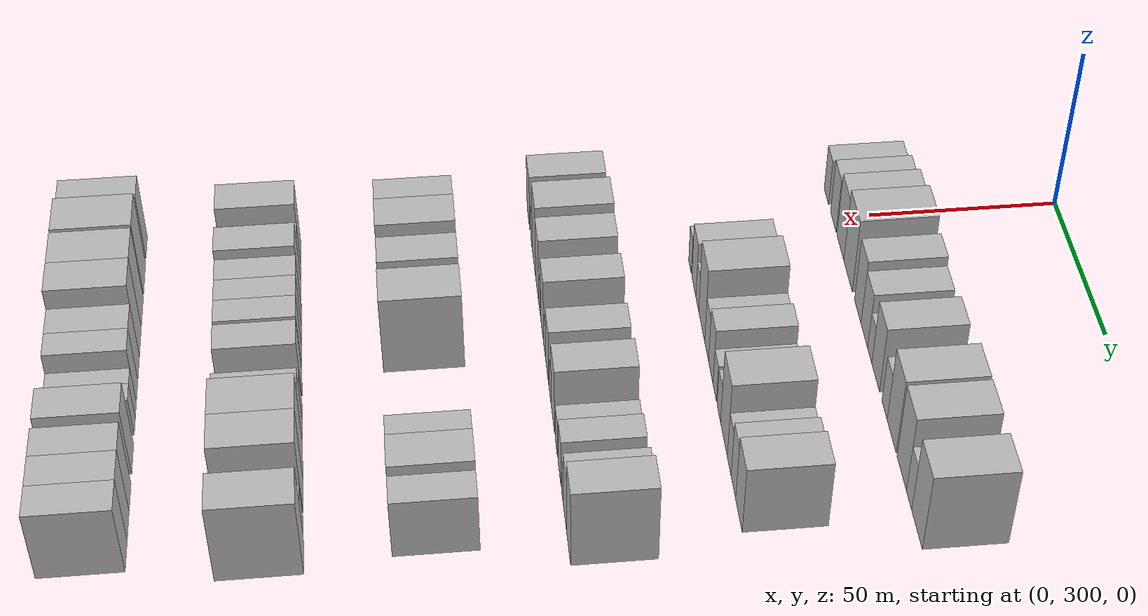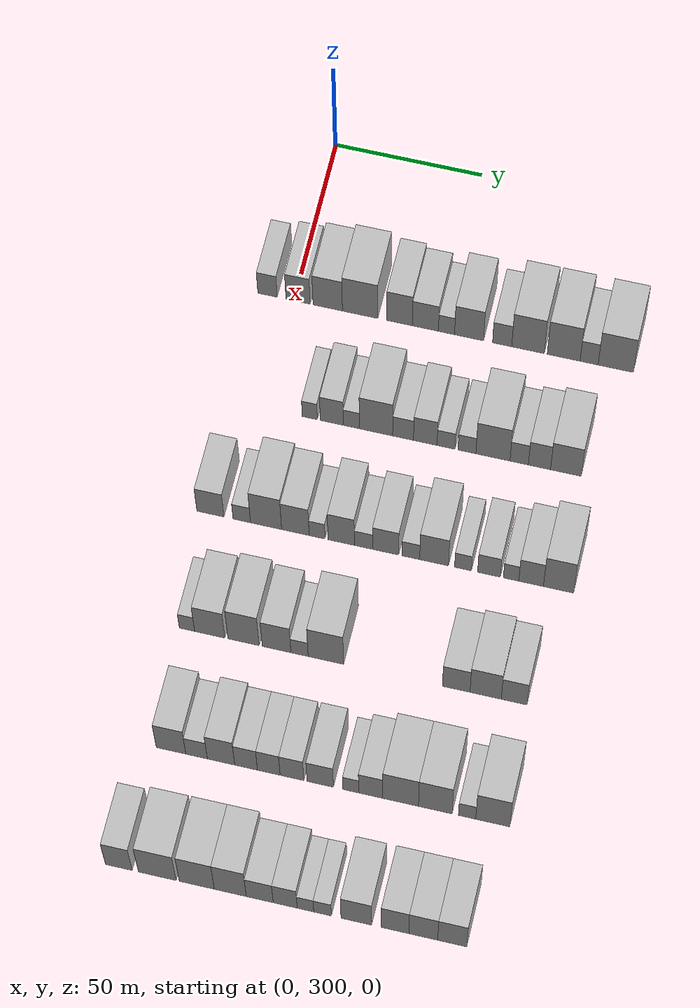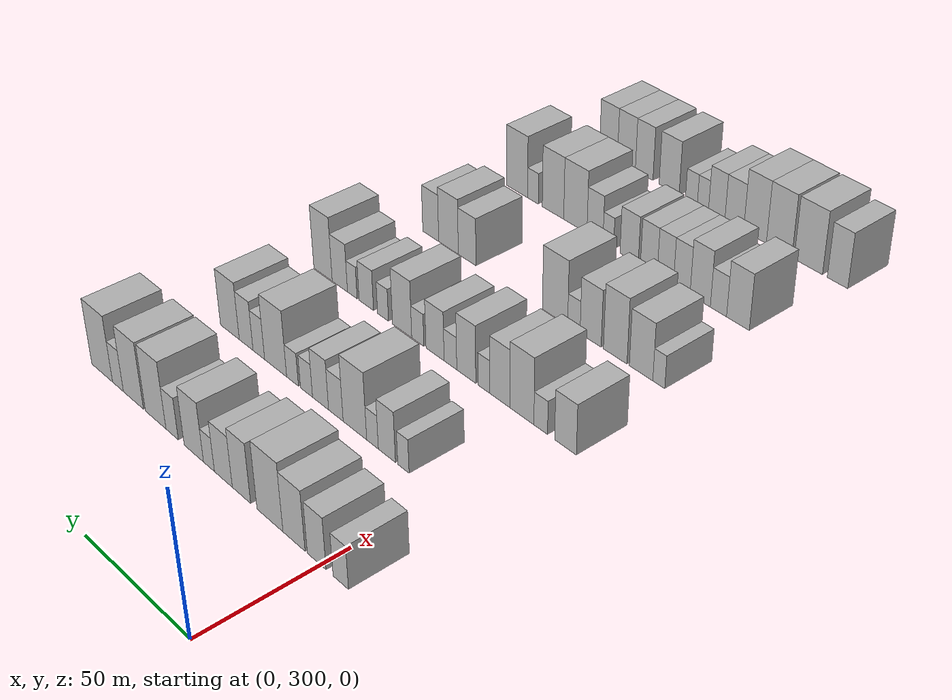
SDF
<sdf version="1.6">
 <world name="default">
  <model name="building_101">
   <static>1</static>
   <pose>50.0000 291.2030 0 0.000000 0.000000 0.000000</pose>
   <link name="link">
    <pose>0 0 7.50 0 0 0</pose>
    <collision name="collision"><geometry><box><size>20.0000 6.5562 15.0000</size></box></geometry></collision>
    <visual name="visual">
     <cast_shadows>0</cast_shadows>
     <geometry><box><size>20.0000 6.5562 15.0000</size></box></geometry>
     <material>
      <script>
       <uri>model://HANNAS_wall/materials/scripts</uri>
       <uri>model://HANNAS_wall/materials/textures</uri>
       <name>vrc/HANNAS_wall</name>
      </script>
     </material>
    </visual>
   </link>
  </model>
  <model name="building_102">
   <static>1</static>
   <pose>50.0000 301.5662 0 0.000000 0.000000 0.000000</pose>
   <link name="link">
    <pose>0 0 9.00 0 0 0</pose>
    <collision name="collision"><geometry><box><size>20.0000 8.1703 18.0000</size></box></geometry></collision>
    <visual name="visual">
     <cast_shadows>0</cast_shadows>
     <geometry><box><size>20.0000 8.1703 18.0000</size></box></geometry>
     <material>
      <script>
       <uri>model://HANNAS_wall/materials/scripts</uri>
       <uri>model://HANNAS_wall/materials/textures</uri>
       <name>vrc/HANNAS_wall</name>
      </script>
     </material>
    </visual>
   </link>
  </model>
  <model name="building_103">
   <static>1</static>
   <pose>50.0000 311.6178 0 0.000000 0.000000 0.000000</pose>
   <link name="link">
    <pose>0 0 10.50 0 0 0</pose>
    <collision name="collision"><geometry><box><size>20.0000 9.9328 21.0000</size></box></geometry></collision>
    <visual name="visual">
     <cast_shadows>0</cast_shadows>
     <geometry><box><size>20.0000 9.9328 21.0000</size></box></geometry>
     <material>
      <script>
       <uri>model://HANNAS_wall/materials/scripts</uri>
       <uri>model://HANNAS_wall/materials/textures</uri>
       <name>vrc/HANNAS_wall</name>
      </script>
     </material>
    </visual>
   </link>
  </model>
  <model name="building_104">
   <static>1</static>
   <pose>50.0000 322.5588 0 0.000000 0.000000 0.000000</pose>
   <link name="link">
    <pose>0 0 12.00 0 0 0</pose>
    <collision name="collision"><geometry><box><size>20.0000 11.9493 24.0000</size></box></geometry></collision>
    <visual name="visual">
     <cast_shadows>0</cast_shadows>
     <geometry><box><size>20.0000 11.9493 24.0000</size></box></geometry>
     <material>
      <script>
       <uri>model://HANNAS_wall/materials/scripts</uri>
       <uri>model://HANNAS_wall/materials/textures</uri>
       <name>vrc/HANNAS_wall</name>
      </script>
     </material>
    </visual>
   </link>
  </model>
  <model name="building_105">
   <static>1</static>
   <pose>50.0000 335.8869 0 0.000000 0.000000 0.000000</pose>
   <link name="link">
    <pose>0 0 10.50 0 0 0</pose>
    <collision name="collision"><geometry><box><size>20.0000 8.7069 21.0000</size></box></geometry></collision>
    <visual name="visual">
     <cast_shadows>0</cast_shadows>
     <geometry><box><size>20.0000 8.7069 21.0000</size></box></geometry>
     <material>
      <script>
       <uri>model://HANNAS_wall/materials/scripts</uri>
       <uri>model://HANNAS_wall/materials/textures</uri>
       <name>vrc/HANNAS_wall</name>
      </script>
     </material>
    </visual>
   </link>
  </model>
  <model name="building_106">
   <static>1</static>
   <pose>50.0000 344.6105 0 0.000000 0.000000 0.000000</pose>
   <link name="link">
    <pose>0 0 9.00 0 0 0</pose>
    <collision name="collision"><geometry><box><size>20.0000 8.7403 18.0000</size></box></geometry></collision>
    <visual name="visual">
     <cast_shadows>0</cast_shadows>
     <geometry><box><size>20.0000 8.7403 18.0000</size></box></geometry>
     <material>
      <script>
       <uri>model://HANNAS_wall/materials/scripts</uri>
       <uri>model://HANNAS_wall/materials/textures</uri>
       <name>vrc/HANNAS_wall</name>
      </script>
     </material>
    </visual>
   </link>
  </model>
  <model name="building_107">
   <static>1</static>
   <pose>50.0000 351.6913 0 0.000000 0.000000 0.000000</pose>
   <link name="link">
    <pose>0 0 6.00 0 0 0</pose>
    <collision name="collision"><geometry><box><size>20.0000 5.4213 12.0000</size></box></geometry></collision>
    <visual name="visual">
     <cast_shadows>0</cast_shadows>
     <geometry><box><size>20.0000 5.4213 12.0000</size></box></geometry>
     <material>
      <script>
       <uri>model://HANNAS_wall/materials/scripts</uri>
       <uri>model://HANNAS_wall/materials/textures</uri>
       <name>vrc/HANNAS_wall</name>
      </script>
     </material>
    </visual>
   </link>
  </model>
  <model name="building_108">
   <static>1</static>
   <pose>50.0000 359.2722 0 0.000000 0.000000 0.000000</pose>
   <link name="link">
    <pose>0 0 10.50 0 0 0</pose>
    <collision name="collision"><geometry><box><size>20.0000 9.7405 21.0000</size></box></geometry></collision>
    <visual name="visual">
     <cast_shadows>0</cast_shadows>
     <geometry><box><size>20.0000 9.7405 21.0000</size></box></geometry>
     <material>
      <script>
       <uri>model://HANNAS_wall/materials/scripts</uri>
       <uri>model://HANNAS_wall/materials/textures</uri>
       <name>vrc/HANNAS_wall</name>
      </script>
     </material>
    </visual>
   </link>
  </model>
  <model name="building_109">
   <static>1</static>
   <pose>50.0000 370.3510 0 0.000000 0.000000 0.000000</pose>
   <link name="link">
    <pose>0 0 7.50 0 0 0</pose>
    <collision name="collision"><geometry><box><size>20.0000 6.4170 15.0000</size></box></geometry></collision>
    <visual name="visual">
     <cast_shadows>0</cast_shadows>
     <geometry><box><size>20.0000 6.4170 15.0000</size></box></geometry>
     <material>
      <script>
       <uri>model://HANNAS_wall/materials/scripts</uri>
       <uri>model://HANNAS_wall/materials/textures</uri>
       <name>vrc/HANNAS_wall</name>
      </script>
     </material>
    </visual>
   </link>
  </model>
  <model name="building_110">
   <static>1</static>
   <pose>50.0000 379.0063 0 0.000000 0.000000 0.000000</pose>
   <link name="link">
    <pose>0 0 12.00 0 0 0</pose>
    <collision name="collision"><geometry><box><size>20.0000 10.8938 24.0000</size></box></geometry></collision>
    <visual name="visual">
     <cast_shadows>0</cast_shadows>
     <geometry><box><size>20.0000 10.8938 24.0000</size></box></geometry>
     <material>
      <script>
       <uri>model://HANNAS_wall/materials/scripts</uri>
       <uri>model://HANNAS_wall/materials/textures</uri>
       <name>vrc/HANNAS_wall</name>
      </script>
     </material>
    </visual>
   </link>
  </model>
  <model name="building_111">
   <static>1</static>
   <pose>50.0000 390.9283 0 0.000000 0.000000 0.000000</pose>
   <link name="link">
    <pose>0 0 12.00 0 0 0</pose>
    <collision name="collision"><geometry><box><size>20.0000 10.9502 24.0000</size></box></geometry></collision>
    <visual name="visual">
     <cast_shadows>0</cast_shadows>
     <geometry><box><size>20.0000 10.9502 24.0000</size></box></geometry>
     <material>
      <script>
       <uri>model://HANNAS_wall/materials/scripts</uri>
       <uri>model://HANNAS_wall/materials/textures</uri>
       <name>vrc/HANNAS_wall</name>
      </script>
     </material>
    </visual>
   </link>
  </model>
  <model name="building_112">
   <static>1</static>
   <pose>50.0000 399.4115 0 0.000000 0.000000 0.000000</pose>
   <link name="link">
    <pose>0 0 7.50 0 0 0</pose>
    <collision name="collision"><geometry><box><size>20.0000 6.0160 15.0000</size></box></geometry></collision>
    <visual name="visual">
     <cast_shadows>0</cast_shadows>
     <geometry><box><size>20.0000 6.0160 15.0000</size></box></geometry>
     <material>
      <script>
       <uri>model://HANNAS_wall/materials/scripts</uri>
       <uri>model://HANNAS_wall/materials/textures</uri>
       <name>vrc/HANNAS_wall</name>
      </script>
     </material>
    </visual>
   </link>
  </model>
  <model name="building_113">
   <static>1</static>
   <pose>50.0000 408.2998 0 0.000000 0.000000 0.000000</pose>
   <link name="link">
    <pose>0 0 12.00 0 0 0</pose>
    <collision name="collision"><geometry><box><size>20.0000 11.7606 24.0000</size></box></geometry></collision>
    <visual name="visual">
     <cast_shadows>0</cast_shadows>
     <geometry><box><size>20.0000 11.7606 24.0000</size></box></geometry>
     <material>
      <script>
       <uri>model://HANNAS_wall/materials/scripts</uri>
       <uri>model://HANNAS_wall/materials/textures</uri>
       <name>vrc/HANNAS_wall</name>
      </script>
     </material>
    </visual>
   </link>
  </model>
  <model name="building_237">
   <static>1</static>
   <pose>90.0000 315.3220 0 0.000000 0.000000 0.000000</pose>
   <link name="link">
    <pose>0 0 6.00 0 0 0</pose>
    <collision name="collision"><geometry><box><size>20.0000 5.0399 12.0000</size></box></geometry></collision>
    <visual name="visual">
     <cast_shadows>0</cast_shadows>
     <geometry><box><size>20.0000 5.0399 12.0000</size></box></geometry>
     <material>
      <script>
       <uri>model://HANNAS_wall/materials/scripts</uri>
       <uri>model://HANNAS_wall/materials/textures</uri>
       <name>vrc/HANNAS_wall</name>
      </script>
     </material>
    </visual>
   </link>
  </model>
  <model name="building_238">
   <static>1</static>
   <pose>90.0000 322.7026 0 0.000000 0.000000 0.000000</pose>
   <link name="link">
    <pose>0 0 9.00 0 0 0</pose>
    <collision name="collision"><geometry><box><size>20.0000 7.7215 18.0000</size></box></geometry></collision>
    <visual name="visual">
     <cast_shadows>0</cast_shadows>
     <geometry><box><size>20.0000 7.7215 18.0000</size></box></geometry>
     <material>
      <script>
       <uri>model://HANNAS_wall/materials/scripts</uri>
       <uri>model://HANNAS_wall/materials/textures</uri>
       <name>vrc/HANNAS_wall</name>
      </script>
     </material>
    </visual>
   </link>
  </model>
  <model name="building_239">
   <static>1</static>
   <pose>90.0000 329.2253 0 0.000000 0.000000 0.000000</pose>
   <link name="link">
    <pose>0 0 6.00 0 0 0</pose>
    <collision name="collision"><geometry><box><size>20.0000 5.3239 12.0000</size></box></geometry></collision>
    <visual name="visual">
     <cast_shadows>0</cast_shadows>
     <geometry><box><size>20.0000 5.3239 12.0000</size></box></geometry>
     <material>
      <script>
       <uri>model://HANNAS_wall/materials/scripts</uri>
       <uri>model://HANNAS_wall/materials/textures</uri>
       <name>vrc/HANNAS_wall</name>
      </script>
     </material>
    </visual>
   </link>
  </model>
  <model name="building_240">
   <static>1</static>
   <pose>90.0000 337.3894 0 0.000000 0.000000 0.000000</pose>
   <link name="link">
    <pose>0 0 12.00 0 0 0</pose>
    <collision name="collision"><geometry><box><size>20.0000 11.0042 24.0000</size></box></geometry></collision>
    <visual name="visual">
     <cast_shadows>0</cast_shadows>
     <geometry><box><size>20.0000 11.0042 24.0000</size></box></geometry>
     <material>
      <script>
       <uri>model://HANNAS_wall/materials/scripts</uri>
       <uri>model://HANNAS_wall/materials/textures</uri>
       <name>vrc/HANNAS_wall</name>
      </script>
     </material>
    </visual>
   </link>
  </model>
  <model name="building_241">
   <static>1</static>
   <pose>90.0000 346.3576 0 0.000000 0.000000 0.000000</pose>
   <link name="link">
    <pose>0 0 7.50 0 0 0</pose>
    <collision name="collision"><geometry><box><size>20.0000 6.9323 15.0000</size></box></geometry></collision>
    <visual name="visual">
     <cast_shadows>0</cast_shadows>
     <geometry><box><size>20.0000 6.9323 15.0000</size></box></geometry>
     <material>
      <script>
       <uri>model://HANNAS_wall/materials/scripts</uri>
       <uri>model://HANNAS_wall/materials/textures</uri>
       <name>vrc/HANNAS_wall</name>
      </script>
     </material>
    </visual>
   </link>
  </model>
  <model name="building_242">
   <static>1</static>
   <pose>90.0000 353.7307 0 0.000000 0.000000 0.000000</pose>
   <link name="link">
    <pose>0 0 9.00 0 0 0</pose>
    <collision name="collision"><geometry><box><size>20.0000 7.8138 18.0000</size></box></geometry></collision>
    <visual name="visual">
     <cast_shadows>0</cast_shadows>
     <geometry><box><size>20.0000 7.8138 18.0000</size></box></geometry>
     <material>
      <script>
       <uri>model://HANNAS_wall/materials/scripts</uri>
       <uri>model://HANNAS_wall/materials/textures</uri>
       <name>vrc/HANNAS_wall</name>
      </script>
     </material>
    </visual>
   </link>
  </model>
  <model name="building_243">
   <static>1</static>
   <pose>90.0000 360.6090 0 0.000000 0.000000 0.000000</pose>
   <link name="link">
    <pose>0 0 6.00 0 0 0</pose>
    <collision name="collision"><geometry><box><size>20.0000 5.9428 12.0000</size></box></geometry></collision>
    <visual name="visual">
     <cast_shadows>0</cast_shadows>
     <geometry><box><size>20.0000 5.9428 12.0000</size></box></geometry>
     <material>
      <script>
       <uri>model://HANNAS_wall/materials/scripts</uri>
       <uri>model://HANNAS_wall/materials/textures</uri>
       <name>vrc/HANNAS_wall</name>
      </script>
     </material>
    </visual>
   </link>
  </model>
  <model name="building_244">
   <static>1</static>
   <pose>90.0000 367.5336 0 0.000000 0.000000 0.000000</pose>
   <link name="link">
    <pose>0 0 6.00 0 0 0</pose>
    <collision name="collision"><geometry><box><size>20.0000 5.9064 12.0000</size></box></geometry></collision>
    <visual name="visual">
     <cast_shadows>0</cast_shadows>
     <geometry><box><size>20.0000 5.9064 12.0000</size></box></geometry>
     <material>
      <script>
       <uri>model://HANNAS_wall/materials/scripts</uri>
       <uri>model://HANNAS_wall/materials/textures</uri>
       <name>vrc/HANNAS_wall</name>
      </script>
     </material>
    </visual>
   </link>
  </model>
  <model name="building_245">
   <static>1</static>
   <pose>90.0000 376.1183 0 0.000000 0.000000 0.000000</pose>
   <link name="link">
    <pose>0 0 12.00 0 0 0</pose>
    <collision name="collision"><geometry><box><size>20.0000 11.2629 24.0000</size></box></geometry></collision>
    <visual name="visual">
     <cast_shadows>0</cast_shadows>
     <geometry><box><size>20.0000 11.2629 24.0000</size></box></geometry>
     <material>
      <script>
       <uri>model://HANNAS_wall/materials/scripts</uri>
       <uri>model://HANNAS_wall/materials/textures</uri>
       <name>vrc/HANNAS_wall</name>
      </script>
     </material>
    </visual>
   </link>
  </model>
  <model name="building_246">
   <static>1</static>
   <pose>90.0000 384.7715 0 0.000000 0.000000 0.000000</pose>
   <link name="link">
    <pose>0 0 7.50 0 0 0</pose>
    <collision name="collision"><geometry><box><size>20.0000 6.0434 15.0000</size></box></geometry></collision>
    <visual name="visual">
     <cast_shadows>0</cast_shadows>
     <geometry><box><size>20.0000 6.0434 15.0000</size></box></geometry>
     <material>
      <script>
       <uri>model://HANNAS_wall/materials/scripts</uri>
       <uri>model://HANNAS_wall/materials/textures</uri>
       <name>vrc/HANNAS_wall</name>
      </script>
     </material>
    </visual>
   </link>
  </model>
  <model name="building_247">
   <static>1</static>
   <pose>90.0000 391.4435 0 0.000000 0.000000 0.000000</pose>
   <link name="link">
    <pose>0 0 9.00 0 0 0</pose>
    <collision name="collision"><geometry><box><size>20.0000 7.3007 18.0000</size></box></geometry></collision>
    <visual name="visual">
     <cast_shadows>0</cast_shadows>
     <geometry><box><size>20.0000 7.3007 18.0000</size></box></geometry>
     <material>
      <script>
       <uri>model://HANNAS_wall/materials/scripts</uri>
       <uri>model://HANNAS_wall/materials/textures</uri>
       <name>vrc/HANNAS_wall</name>
      </script>
     </material>
    </visual>
   </link>
  </model>
  <model name="building_248">
   <static>1</static>
   <pose>90.0000 400.1529 0 0.000000 0.000000 0.000000</pose>
   <link name="link">
    <pose>0 0 10.50 0 0 0</pose>
    <collision name="collision"><geometry><box><size>20.0000 10.1180 21.0000</size></box></geometry></collision>
    <visual name="visual">
     <cast_shadows>0</cast_shadows>
     <geometry><box><size>20.0000 10.1180 21.0000</size></box></geometry>
     <material>
      <script>
       <uri>model://HANNAS_wall/materials/scripts</uri>
       <uri>model://HANNAS_wall/materials/textures</uri>
       <name>vrc/HANNAS_wall</name>
      </script>
     </material>
    </visual>
   </link>
  </model>
  <model name="building_376">
   <static>1</static>
   <pose>130.0000 292.3466 0 0.000000 0.000000 0.000000</pose>
   <link name="link">
    <pose>0 0 9.00 0 0 0</pose>
    <collision name="collision"><geometry><box><size>20.0000 8.9408 18.0000</size></box></geometry></collision>
    <visual name="visual">
     <cast_shadows>0</cast_shadows>
     <geometry><box><size>20.0000 8.9408 18.0000</size></box></geometry>
     <material>
      <script>
       <uri>model://HANNAS_wall/materials/scripts</uri>
       <uri>model://HANNAS_wall/materials/textures</uri>
       <name>vrc/HANNAS_wall</name>
      </script>
     </material>
    </visual>
   </link>
  </model>
  <model name="building_377">
   <static>1</static>
   <pose>130.0000 302.6996 0 0.000000 0.000000 0.000000</pose>
   <link name="link">
    <pose>0 0 6.00 0 0 0</pose>
    <collision name="collision"><geometry><box><size>20.0000 5.7654 12.0000</size></box></geometry></collision>
    <visual name="visual">
     <cast_shadows>0</cast_shadows>
     <geometry><box><size>20.0000 5.7654 12.0000</size></box></geometry>
     <material>
      <script>
       <uri>model://HANNAS_wall/materials/scripts</uri>
       <uri>model://HANNAS_wall/materials/textures</uri>
       <name>vrc/HANNAS_wall</name>
      </script>
     </material>
    </visual>
   </link>
  </model>
  <model name="building_378">
   <static>1</static>
   <pose>130.0000 310.7073 0 0.000000 0.000000 0.000000</pose>
   <link name="link">
    <pose>0 0 12.00 0 0 0</pose>
    <collision name="collision"><geometry><box><size>20.0000 10.2499 24.0000</size></box></geometry></collision>
    <visual name="visual">
     <cast_shadows>0</cast_shadows>
     <geometry><box><size>20.0000 10.2499 24.0000</size></box></geometry>
     <material>
      <script>
       <uri>model://HANNAS_wall/materials/scripts</uri>
       <uri>model://HANNAS_wall/materials/textures</uri>
       <name>vrc/HANNAS_wall</name>
      </script>
     </material>
    </visual>
   </link>
  </model>
  <model name="building_379">
   <static>1</static>
   <pose>130.0000 320.3564 0 0.000000 0.000000 0.000000</pose>
   <link name="link">
    <pose>0 0 10.50 0 0 0</pose>
    <collision name="collision"><geometry><box><size>20.0000 9.0484 21.0000</size></box></geometry></collision>
    <visual name="visual">
     <cast_shadows>0</cast_shadows>
     <geometry><box><size>20.0000 9.0484 21.0000</size></box></geometry>
     <material>
      <script>
       <uri>model://HANNAS_wall/materials/scripts</uri>
       <uri>model://HANNAS_wall/materials/textures</uri>
       <name>vrc/HANNAS_wall</name>
      </script>
     </material>
    </visual>
   </link>
  </model>
  <model name="building_380">
   <static>1</static>
   <pose>130.0000 327.4883 0 0.000000 0.000000 0.000000</pose>
   <link name="link">
    <pose>0 0 6.00 0 0 0</pose>
    <collision name="collision"><geometry><box><size>20.0000 5.2154 12.0000</size></box></geometry></collision>
    <visual name="visual">
     <cast_shadows>0</cast_shadows>
     <geometry><box><size>20.0000 5.2154 12.0000</size></box></geometry>
     <material>
      <script>
       <uri>model://HANNAS_wall/materials/scripts</uri>
       <uri>model://HANNAS_wall/materials/textures</uri>
       <name>vrc/HANNAS_wall</name>
      </script>
     </material>
    </visual>
   </link>
  </model>
  <model name="building_381">
   <static>1</static>
   <pose>130.0000 335.4414 0 0.000000 0.000000 0.000000</pose>
   <link name="link">
    <pose>0 0 10.50 0 0 0</pose>
    <collision name="collision"><geometry><box><size>20.0000 8.6909 21.0000</size></box></geometry></collision>
    <visual name="visual">
     <cast_shadows>0</cast_shadows>
     <geometry><box><size>20.0000 8.6909 21.0000</size></box></geometry>
     <material>
      <script>
       <uri>model://HANNAS_wall/materials/scripts</uri>
       <uri>model://HANNAS_wall/materials/textures</uri>
       <name>vrc/HANNAS_wall</name>
      </script>
     </material>
    </visual>
   </link>
  </model>
  <model name="building_382">
   <static>1</static>
   <pose>130.0000 342.7356 0 0.000000 0.000000 0.000000</pose>
   <link name="link">
    <pose>0 0 6.00 0 0 0</pose>
    <collision name="collision"><geometry><box><size>20.0000 5.8975 12.0000</size></box></geometry></collision>
    <visual name="visual">
     <cast_shadows>0</cast_shadows>
     <geometry><box><size>20.0000 5.8975 12.0000</size></box></geometry>
     <material>
      <script>
       <uri>model://HANNAS_wall/materials/scripts</uri>
       <uri>model://HANNAS_wall/materials/textures</uri>
       <name>vrc/HANNAS_wall</name>
      </script>
     </material>
    </visual>
   </link>
  </model>
  <model name="building_383">
   <static>1</static>
   <pose>130.0000 349.9667 0 0.000000 0.000000 0.000000</pose>
   <link name="link">
    <pose>0 0 9.00 0 0 0</pose>
    <collision name="collision"><geometry><box><size>20.0000 8.5647 18.0000</size></box></geometry></collision>
    <visual name="visual">
     <cast_shadows>0</cast_shadows>
     <geometry><box><size>20.0000 8.5647 18.0000</size></box></geometry>
     <material>
      <script>
       <uri>model://HANNAS_wall/materials/scripts</uri>
       <uri>model://HANNAS_wall/materials/textures</uri>
       <name>vrc/HANNAS_wall</name>
      </script>
     </material>
    </visual>
   </link>
  </model>
  <model name="building_384">
   <static>1</static>
   <pose>130.0000 358.1767 0 0.000000 0.000000 0.000000</pose>
   <link name="link">
    <pose>0 0 6.00 0 0 0</pose>
    <collision name="collision"><geometry><box><size>20.0000 5.8553 12.0000</size></box></geometry></collision>
    <visual name="visual">
     <cast_shadows>0</cast_shadows>
     <geometry><box><size>20.0000 5.8553 12.0000</size></box></geometry>
     <material>
      <script>
       <uri>model://HANNAS_wall/materials/scripts</uri>
       <uri>model://HANNAS_wall/materials/textures</uri>
       <name>vrc/HANNAS_wall</name>
      </script>
     </material>
    </visual>
   </link>
  </model>
  <model name="building_385">
   <static>1</static>
   <pose>130.0000 365.8003 0 0.000000 0.000000 0.000000</pose>
   <link name="link">
    <pose>0 0 10.50 0 0 0</pose>
    <collision name="collision"><geometry><box><size>20.0000 9.3918 21.0000</size></box></geometry></collision>
    <visual name="visual">
     <cast_shadows>0</cast_shadows>
     <geometry><box><size>20.0000 9.3918 21.0000</size></box></geometry>
     <material>
      <script>
       <uri>model://HANNAS_wall/materials/scripts</uri>
       <uri>model://HANNAS_wall/materials/textures</uri>
       <name>vrc/HANNAS_wall</name>
      </script>
     </material>
    </visual>
   </link>
  </model>
  <model name="building_386">
   <static>1</static>
   <pose>130.0000 375.2388 0 0.000000 0.000000 0.000000</pose>
   <link name="link">
    <pose>0 0 6.00 0 0 0</pose>
    <collision name="collision"><geometry><box><size>20.0000 5.4852 12.0000</size></box></geometry></collision>
    <visual name="visual">
     <cast_shadows>0</cast_shadows>
     <geometry><box><size>20.0000 5.4852 12.0000</size></box></geometry>
     <material>
      <script>
       <uri>model://HANNAS_wall/materials/scripts</uri>
       <uri>model://HANNAS_wall/materials/textures</uri>
       <name>vrc/HANNAS_wall</name>
      </script>
     </material>
    </visual>
   </link>
  </model>
  <model name="building_387">
   <static>1</static>
   <pose>130.0000 383.6699 0 0.000000 0.000000 0.000000</pose>
   <link name="link">
    <pose>0 0 7.50 0 0 0</pose>
    <collision name="collision"><geometry><box><size>20.0000 7.3772 15.0000</size></box></geometry></collision>
    <visual name="visual">
     <cast_shadows>0</cast_shadows>
     <geometry><box><size>20.0000 7.3772 15.0000</size></box></geometry>
     <material>
      <script>
       <uri>model://HANNAS_wall/materials/scripts</uri>
       <uri>model://HANNAS_wall/materials/textures</uri>
       <name>vrc/HANNAS_wall</name>
      </script>
     </material>
    </visual>
   </link>
  </model>
  <model name="building_388">
   <static>1</static>
   <pose>130.0000 390.8518 0 0.000000 0.000000 0.000000</pose>
   <link name="link">
    <pose>0 0 6.00 0 0 0</pose>
    <collision name="collision"><geometry><box><size>20.0000 4.9866 12.0000</size></box></geometry></collision>
    <visual name="visual">
     <cast_shadows>0</cast_shadows>
     <geometry><box><size>20.0000 4.9866 12.0000</size></box></geometry>
     <material>
      <script>
       <uri>model://HANNAS_wall/materials/scripts</uri>
       <uri>model://HANNAS_wall/materials/textures</uri>
       <name>vrc/HANNAS_wall</name>
      </script>
     </material>
    </visual>
   </link>
  </model>
  <model name="building_389">
   <static>1</static>
   <pose>130.0000 397.3499 0 0.000000 0.000000 0.000000</pose>
   <link name="link">
    <pose>0 0 9.00 0 0 0</pose>
    <collision name="collision"><geometry><box><size>20.0000 8.0096 18.0000</size></box></geometry></collision>
    <visual name="visual">
     <cast_shadows>0</cast_shadows>
     <geometry><box><size>20.0000 8.0096 18.0000</size></box></geometry>
     <material>
      <script>
       <uri>model://HANNAS_wall/materials/scripts</uri>
       <uri>model://HANNAS_wall/materials/textures</uri>
       <name>vrc/HANNAS_wall</name>
      </script>
     </material>
    </visual>
   </link>
  </model>
  <model name="building_390">
   <static>1</static>
   <pose>130.0000 406.2601 0 0.000000 0.000000 0.000000</pose>
   <link name="link">
    <pose>0 0 12.00 0 0 0</pose>
    <collision name="collision"><geometry><box><size>20.0000 9.8107 24.0000</size></box></geometry></collision>
    <visual name="visual">
     <cast_shadows>0</cast_shadows>
     <geometry><box><size>20.0000 9.8107 24.0000</size></box></geometry>
     <material>
      <script>
       <uri>model://HANNAS_wall/materials/scripts</uri>
       <uri>model://HANNAS_wall/materials/textures</uri>
       <name>vrc/HANNAS_wall</name>
      </script>
     </material>
    </visual>
   </link>
  </model>
  <model name="building_508">
   <static>1</static>
   <pose>170.0000 294.9899 0 0.000000 0.000000 0.000000</pose>
   <link name="link">
    <pose>0 0 6.00 0 0 0</pose>
    <collision name="collision"><geometry><box><size>20.0000 4.9577 12.0000</size></box></geometry></collision>
    <visual name="visual">
     <cast_shadows>0</cast_shadows>
     <geometry><box><size>20.0000 4.9577 12.0000</size></box></geometry>
     <material>
      <script>
       <uri>model://HANNAS_wall/materials/scripts</uri>
       <uri>model://HANNAS_wall/materials/textures</uri>
       <name>vrc/HANNAS_wall</name>
      </script>
     </material>
    </visual>
   </link>
  </model>
  <model name="building_509">
   <static>1</static>
   <pose>170.0000 302.3897 0 0.000000 0.000000 0.000000</pose>
   <link name="link">
    <pose>0 0 10.50 0 0 0</pose>
    <collision name="collision"><geometry><box><size>20.0000 9.8420 21.0000</size></box></geometry></collision>
    <visual name="visual">
     <cast_shadows>0</cast_shadows>
     <geometry><box><size>20.0000 9.8420 21.0000</size></box></geometry>
     <material>
      <script>
       <uri>model://HANNAS_wall/materials/scripts</uri>
       <uri>model://HANNAS_wall/materials/textures</uri>
       <name>vrc/HANNAS_wall</name>
      </script>
     </material>
    </visual>
   </link>
  </model>
  <model name="building_510">
   <static>1</static>
   <pose>170.0000 313.3785 0 0.000000 0.000000 0.000000</pose>
   <link name="link">
    <pose>0 0 12.00 0 0 0</pose>
    <collision name="collision"><geometry><box><size>20.0000 10.1355 24.0000</size></box></geometry></collision>
    <visual name="visual">
     <cast_shadows>0</cast_shadows>
     <geometry><box><size>20.0000 10.1355 24.0000</size></box></geometry>
     <material>
      <script>
       <uri>model://HANNAS_wall/materials/scripts</uri>
       <uri>model://HANNAS_wall/materials/textures</uri>
       <name>vrc/HANNAS_wall</name>
      </script>
     </material>
    </visual>
   </link>
  </model>
  <model name="building_511">
   <static>1</static>
   <pose>170.0000 324.0894 0 0.000000 0.000000 0.000000</pose>
   <link name="link">
    <pose>0 0 10.50 0 0 0</pose>
    <collision name="collision"><geometry><box><size>20.0000 9.2864 21.0000</size></box></geometry></collision>
    <visual name="visual">
     <cast_shadows>0</cast_shadows>
     <geometry><box><size>20.0000 9.2864 21.0000</size></box></geometry>
     <material>
      <script>
       <uri>model://HANNAS_wall/materials/scripts</uri>
       <uri>model://HANNAS_wall/materials/textures</uri>
       <name>vrc/HANNAS_wall</name>
      </script>
     </material>
    </visual>
   </link>
  </model>
  <model name="building_512">
   <static>1</static>
   <pose>170.0000 331.5299 0 0.000000 0.000000 0.000000</pose>
   <link name="link">
    <pose>0 0 6.00 0 0 0</pose>
    <collision name="collision"><geometry><box><size>20.0000 5.5945 12.0000</size></box></geometry></collision>
    <visual name="visual">
     <cast_shadows>0</cast_shadows>
     <geometry><box><size>20.0000 5.5945 12.0000</size></box></geometry>
     <material>
      <script>
       <uri>model://HANNAS_wall/materials/scripts</uri>
       <uri>model://HANNAS_wall/materials/textures</uri>
       <name>vrc/HANNAS_wall</name>
      </script>
     </material>
    </visual>
   </link>
  </model>
  <model name="building_513">
   <static>1</static>
   <pose>170.0000 340.0610 0 0.000000 0.000000 0.000000</pose>
   <link name="link">
    <pose>0 0 12.00 0 0 0</pose>
    <collision name="collision"><geometry><box><size>20.0000 11.4677 24.0000</size></box></geometry></collision>
    <visual name="visual">
     <cast_shadows>0</cast_shadows>
     <geometry><box><size>20.0000 11.4677 24.0000</size></box></geometry>
     <material>
      <script>
       <uri>model://HANNAS_wall/materials/scripts</uri>
       <uri>model://HANNAS_wall/materials/textures</uri>
       <name>vrc/HANNAS_wall</name>
      </script>
     </material>
    </visual>
   </link>
  </model>
  <model name="building_514">
   <static>1</static>
   <pose>170.0000 382.0357 0 0.000000 0.000000 0.000000</pose>
   <link name="link">
    <pose>0 0 9.00 0 0 0</pose>
    <collision name="collision"><geometry><box><size>20.0000 8.8272 18.0000</size></box></geometry></collision>
    <visual name="visual">
     <cast_shadows>0</cast_shadows>
     <geometry><box><size>20.0000 8.8272 18.0000</size></box></geometry>
     <material>
      <script>
       <uri>model://HANNAS_wall/materials/scripts</uri>
       <uri>model://HANNAS_wall/materials/textures</uri>
       <name>vrc/HANNAS_wall</name>
      </script>
     </material>
    </visual>
   </link>
  </model>
  <model name="building_515">
   <static>1</static>
   <pose>170.0000 391.4471 0 0.000000 0.000000 0.000000</pose>
   <link name="link">
    <pose>0 0 10.50 0 0 0</pose>
    <collision name="collision"><geometry><box><size>20.0000 9.9956 21.0000</size></box></geometry></collision>
    <visual name="visual">
     <cast_shadows>0</cast_shadows>
     <geometry><box><size>20.0000 9.9956 21.0000</size></box></geometry>
     <material>
      <script>
       <uri>model://HANNAS_wall/materials/scripts</uri>
       <uri>model://HANNAS_wall/materials/textures</uri>
       <name>vrc/HANNAS_wall</name>
      </script>
     </material>
    </visual>
   </link>
  </model>
  <model name="building_516">
   <static>1</static>
   <pose>170.0000 400.5787 0 0.000000 0.000000 0.000000</pose>
   <link name="link">
    <pose>0 0 9.00 0 0 0</pose>
    <collision name="collision"><geometry><box><size>20.0000 8.2677 18.0000</size></box></geometry></collision>
    <visual name="visual">
     <cast_shadows>0</cast_shadows>
     <geometry><box><size>20.0000 8.2677 18.0000</size></box></geometry>
     <material>
      <script>
       <uri>model://HANNAS_wall/materials/scripts</uri>
       <uri>model://HANNAS_wall/materials/textures</uri>
       <name>vrc/HANNAS_wall</name>
      </script>
     </material>
    </visual>
   </link>
  </model>
  <model name="building_646">
   <static>1</static>
   <pose>210.0000 300.2741 0 0.000000 0.000000 0.000000</pose>
   <link name="link">
    <pose>0 0 10.50 0 0 0</pose>
    <collision name="collision"><geometry><box><size>20.0000 9.4764 21.0000</size></box></geometry></collision>
    <visual name="visual">
     <cast_shadows>0</cast_shadows>
     <geometry><box><size>20.0000 9.4764 21.0000</size></box></geometry>
     <material>
      <script>
       <uri>model://HANNAS_wall/materials/scripts</uri>
       <uri>model://HANNAS_wall/materials/textures</uri>
       <name>vrc/HANNAS_wall</name>
      </script>
     </material>
    </visual>
   </link>
  </model>
  <model name="building_647">
   <static>1</static>
   <pose>210.0000 308.4617 0 0.000000 0.000000 0.000000</pose>
   <link name="link">
    <pose>0 0 7.50 0 0 0</pose>
    <collision name="collision"><geometry><box><size>20.0000 6.8987 15.0000</size></box></geometry></collision>
    <visual name="visual">
     <cast_shadows>0</cast_shadows>
     <geometry><box><size>20.0000 6.8987 15.0000</size></box></geometry>
     <material>
      <script>
       <uri>model://HANNAS_wall/materials/scripts</uri>
       <uri>model://HANNAS_wall/materials/textures</uri>
       <name>vrc/HANNAS_wall</name>
      </script>
     </material>
    </visual>
   </link>
  </model>
  <model name="building_648">
   <static>1</static>
   <pose>210.0000 316.2827 0 0.000000 0.000000 0.000000</pose>
   <link name="link">
    <pose>0 0 10.50 0 0 0</pose>
    <collision name="collision"><geometry><box><size>20.0000 8.7434 21.0000</size></box></geometry></collision>
    <visual name="visual">
     <cast_shadows>0</cast_shadows>
     <geometry><box><size>20.0000 8.7434 21.0000</size></box></geometry>
     <material>
      <script>
       <uri>model://HANNAS_wall/materials/scripts</uri>
       <uri>model://HANNAS_wall/materials/textures</uri>
       <name>vrc/HANNAS_wall</name>
      </script>
     </material>
    </visual>
   </link>
  </model>
  <model name="building_649">
   <static>1</static>
   <pose>210.0000 324.3030 0 0.000000 0.000000 0.000000</pose>
   <link name="link">
    <pose>0 0 9.00 0 0 0</pose>
    <collision name="collision"><geometry><box><size>20.0000 7.2973 18.0000</size></box></geometry></collision>
    <visual name="visual">
     <cast_shadows>0</cast_shadows>
     <geometry><box><size>20.0000 7.2973 18.0000</size></box></geometry>
     <material>
      <script>
       <uri>model://HANNAS_wall/materials/scripts</uri>
       <uri>model://HANNAS_wall/materials/textures</uri>
       <name>vrc/HANNAS_wall</name>
      </script>
     </material>
    </visual>
   </link>
  </model>
  <model name="building_650">
   <static>1</static>
   <pose>210.0000 331.5621 0 0.000000 0.000000 0.000000</pose>
   <link name="link">
    <pose>0 0 9.00 0 0 0</pose>
    <collision name="collision"><geometry><box><size>20.0000 7.2209 18.0000</size></box></geometry></collision>
    <visual name="visual">
     <cast_shadows>0</cast_shadows>
     <geometry><box><size>20.0000 7.2209 18.0000</size></box></geometry>
     <material>
      <script>
       <uri>model://HANNAS_wall/materials/scripts</uri>
       <uri>model://HANNAS_wall/materials/textures</uri>
       <name>vrc/HANNAS_wall</name>
      </script>
     </material>
    </visual>
   </link>
  </model>
  <model name="building_651">
   <static>1</static>
   <pose>210.0000 338.9648 0 0.000000 0.000000 0.000000</pose>
   <link name="link">
    <pose>0 0 9.00 0 0 0</pose>
    <collision name="collision"><geometry><box><size>20.0000 7.5844 18.0000</size></box></geometry></collision>
    <visual name="visual">
     <cast_shadows>0</cast_shadows>
     <geometry><box><size>20.0000 7.5844 18.0000</size></box></geometry>
     <material>
      <script>
       <uri>model://HANNAS_wall/materials/scripts</uri>
       <uri>model://HANNAS_wall/materials/textures</uri>
       <name>vrc/HANNAS_wall</name>
      </script>
     </material>
    </visual>
   </link>
  </model>
  <model name="building_652">
   <static>1</static>
   <pose>210.0000 347.9609 0 0.000000 0.000000 0.000000</pose>
   <link name="link">
    <pose>0 0 9.00 0 0 0</pose>
    <collision name="collision"><geometry><box><size>20.0000 8.4079 18.0000</size></box></geometry></collision>
    <visual name="visual">
     <cast_shadows>0</cast_shadows>
     <geometry><box><size>20.0000 8.4079 18.0000</size></box></geometry>
     <material>
      <script>
       <uri>model://HANNAS_wall/materials/scripts</uri>
       <uri>model://HANNAS_wall/materials/textures</uri>
       <name>vrc/HANNAS_wall</name>
      </script>
     </material>
    </visual>
   </link>
  </model>
  <model name="building_653">
   <static>1</static>
   <pose>210.0000 357.6788 0 0.000000 0.000000 0.000000</pose>
   <link name="link">
    <pose>0 0 6.00 0 0 0</pose>
    <collision name="collision"><geometry><box><size>20.0000 5.0278 12.0000</size></box></geometry></collision>
    <visual name="visual">
     <cast_shadows>0</cast_shadows>
     <geometry><box><size>20.0000 5.0278 12.0000</size></box></geometry>
     <material>
      <script>
       <uri>model://HANNAS_wall/materials/scripts</uri>
       <uri>model://HANNAS_wall/materials/textures</uri>
       <name>vrc/HANNAS_wall</name>
      </script>
     </material>
    </visual>
   </link>
  </model>
  <model name="building_654">
   <static>1</static>
   <pose>210.0000 364.0097 0 0.000000 0.000000 0.000000</pose>
   <link name="link">
    <pose>0 0 9.00 0 0 0</pose>
    <collision name="collision"><geometry><box><size>20.0000 7.6341 18.0000</size></box></geometry></collision>
    <visual name="visual">
     <cast_shadows>0</cast_shadows>
     <geometry><box><size>20.0000 7.6341 18.0000</size></box></geometry>
     <material>
      <script>
       <uri>model://HANNAS_wall/materials/scripts</uri>
       <uri>model://HANNAS_wall/materials/textures</uri>
       <name>vrc/HANNAS_wall</name>
      </script>
     </material>
    </visual>
   </link>
  </model>
  <model name="building_655">
   <static>1</static>
   <pose>210.0000 373.4766 0 0.000000 0.000000 0.000000</pose>
   <link name="link">
    <pose>0 0 12.00 0 0 0</pose>
    <collision name="collision"><geometry><box><size>20.0000 11.2997 24.0000</size></box></geometry></collision>
    <visual name="visual">
     <cast_shadows>0</cast_shadows>
     <geometry><box><size>20.0000 11.2997 24.0000</size></box></geometry>
     <material>
      <script>
       <uri>model://HANNAS_wall/materials/scripts</uri>
       <uri>model://HANNAS_wall/materials/textures</uri>
       <name>vrc/HANNAS_wall</name>
      </script>
     </material>
    </visual>
   </link>
  </model>
  <model name="building_656">
   <static>1</static>
   <pose>210.0000 384.4469 0 0.000000 0.000000 0.000000</pose>
   <link name="link">
    <pose>0 0 12.00 0 0 0</pose>
    <collision name="collision"><geometry><box><size>20.0000 10.6409 24.0000</size></box></geometry></collision>
    <visual name="visual">
     <cast_shadows>0</cast_shadows>
     <geometry><box><size>20.0000 10.6409 24.0000</size></box></geometry>
     <material>
      <script>
       <uri>model://HANNAS_wall/materials/scripts</uri>
       <uri>model://HANNAS_wall/materials/textures</uri>
       <name>vrc/HANNAS_wall</name>
      </script>
     </material>
    </visual>
   </link>
  </model>
  <model name="building_657">
   <static>1</static>
   <pose>210.0000 394.4863 0 0.000000 0.000000 0.000000</pose>
   <link name="link">
    <pose>0 0 6.00 0 0 0</pose>
    <collision name="collision"><geometry><box><size>20.0000 5.4379 12.0000</size></box></geometry></collision>
    <visual name="visual">
     <cast_shadows>0</cast_shadows>
     <geometry><box><size>20.0000 5.4379 12.0000</size></box></geometry>
     <material>
      <script>
       <uri>model://HANNAS_wall/materials/scripts</uri>
       <uri>model://HANNAS_wall/materials/textures</uri>
       <name>vrc/HANNAS_wall</name>
      </script>
     </material>
    </visual>
   </link>
  </model>
  <model name="building_658">
   <static>1</static>
   <pose>210.0000 402.5815 0 0.000000 0.000000 0.000000</pose>
   <link name="link">
    <pose>0 0 12.00 0 0 0</pose>
    <collision name="collision"><geometry><box><size>20.0000 10.7524 24.0000</size></box></geometry></collision>
    <visual name="visual">
     <cast_shadows>0</cast_shadows>
     <geometry><box><size>20.0000 10.7524 24.0000</size></box></geometry>
     <material>
      <script>
       <uri>model://HANNAS_wall/materials/scripts</uri>
       <uri>model://HANNAS_wall/materials/textures</uri>
       <name>vrc/HANNAS_wall</name>
      </script>
     </material>
    </visual>
   </link>
  </model>
  <model name="building_778">
   <static>1</static>
   <pose>250.0000 294.2066 0 0.000000 0.000000 0.000000</pose>
   <link name="link">
    <pose>0 0 10.50 0 0 0</pose>
    <collision name="collision"><geometry><box><size>20.0000 8.4349 21.0000</size></box></geometry></collision>
    <visual name="visual">
     <cast_shadows>0</cast_shadows>
     <geometry><box><size>20.0000 8.4349 21.0000</size></box></geometry>
     <material>
      <script>
       <uri>model://HANNAS_wall/materials/scripts</uri>
       <uri>model://HANNAS_wall/materials/textures</uri>
       <name>vrc/HANNAS_wall</name>
      </script>
     </material>
    </visual>
   </link>
  </model>
  <model name="building_779">
   <static>1</static>
   <pose>250.0000 306.3920 0 0.000000 0.000000 0.000000</pose>
   <link name="link">
    <pose>0 0 12.00 0 0 0</pose>
    <collision name="collision"><geometry><box><size>20.0000 11.9358 24.0000</size></box></geometry></collision>
    <visual name="visual">
     <cast_shadows>0</cast_shadows>
     <geometry><box><size>20.0000 11.9358 24.0000</size></box></geometry>
     <material>
      <script>
       <uri>model://HANNAS_wall/materials/scripts</uri>
       <uri>model://HANNAS_wall/materials/textures</uri>
       <name>vrc/HANNAS_wall</name>
      </script>
     </material>
    </visual>
   </link>
  </model>
  <model name="building_780">
   <static>1</static>
   <pose>250.0000 318.8806 0 0.000000 0.000000 0.000000</pose>
   <link name="link">
    <pose>0 0 12.00 0 0 0</pose>
    <collision name="collision"><geometry><box><size>20.0000 11.0415 24.0000</size></box></geometry></collision>
    <visual name="visual">
     <cast_shadows>0</cast_shadows>
     <geometry><box><size>20.0000 11.0415 24.0000</size></box></geometry>
     <material>
      <script>
       <uri>model://HANNAS_wall/materials/scripts</uri>
       <uri>model://HANNAS_wall/materials/textures</uri>
       <name>vrc/HANNAS_wall</name>
      </script>
     </material>
    </visual>
   </link>
  </model>
  <model name="building_781">
   <static>1</static>
   <pose>250.0000 329.4282 0 0.000000 0.000000 0.000000</pose>
   <link name="link">
    <pose>0 0 12.00 0 0 0</pose>
    <collision name="collision"><geometry><box><size>20.0000 10.0536 24.0000</size></box></geometry></collision>
    <visual name="visual">
     <cast_shadows>0</cast_shadows>
     <geometry><box><size>20.0000 10.0536 24.0000</size></box></geometry>
     <material>
      <script>
       <uri>model://HANNAS_wall/materials/scripts</uri>
       <uri>model://HANNAS_wall/materials/textures</uri>
       <name>vrc/HANNAS_wall</name>
      </script>
     </material>
    </visual>
   </link>
  </model>
  <model name="building_782">
   <static>1</static>
   <pose>250.0000 338.6881 0 0.000000 0.000000 0.000000</pose>
   <link name="link">
    <pose>0 0 9.00 0 0 0</pose>
    <collision name="collision"><geometry><box><size>20.0000 8.4662 18.0000</size></box></geometry></collision>
    <visual name="visual">
     <cast_shadows>0</cast_shadows>
     <geometry><box><size>20.0000 8.4662 18.0000</size></box></geometry>
     <material>
      <script>
       <uri>model://HANNAS_wall/materials/scripts</uri>
       <uri>model://HANNAS_wall/materials/textures</uri>
       <name>vrc/HANNAS_wall</name>
      </script>
     </material>
    </visual>
   </link>
  </model>
  <model name="building_783">
   <static>1</static>
   <pose>250.0000 346.6835 0 0.000000 0.000000 0.000000</pose>
   <link name="link">
    <pose>0 0 9.00 0 0 0</pose>
    <collision name="collision"><geometry><box><size>20.0000 7.5247 18.0000</size></box></geometry></collision>
    <visual name="visual">
     <cast_shadows>0</cast_shadows>
     <geometry><box><size>20.0000 7.5247 18.0000</size></box></geometry>
     <material>
      <script>
       <uri>model://HANNAS_wall/materials/scripts</uri>
       <uri>model://HANNAS_wall/materials/textures</uri>
       <name>vrc/HANNAS_wall</name>
      </script>
     </material>
    </visual>
   </link>
  </model>
  <model name="building_784">
   <static>1</static>
   <pose>250.0000 353.0372 0 0.000000 0.000000 0.000000</pose>
   <link name="link">
    <pose>0 0 6.00 0 0 0</pose>
    <collision name="collision"><geometry><box><size>20.0000 5.1826 12.0000</size></box></geometry></collision>
    <visual name="visual">
     <cast_shadows>0</cast_shadows>
     <geometry><box><size>20.0000 5.1826 12.0000</size></box></geometry>
     <material>
      <script>
       <uri>model://HANNAS_wall/materials/scripts</uri>
       <uri>model://HANNAS_wall/materials/textures</uri>
       <name>vrc/HANNAS_wall</name>
      </script>
     </material>
    </visual>
   </link>
  </model>
  <model name="building_785">
   <static>1</static>
   <pose>250.0000 358.4007 0 0.000000 0.000000 0.000000</pose>
   <link name="link">
    <pose>0 0 6.00 0 0 0</pose>
    <collision name="collision"><geometry><box><size>20.0000 5.5443 12.0000</size></box></geometry></collision>
    <visual name="visual">
     <cast_shadows>0</cast_shadows>
     <geometry><box><size>20.0000 5.5443 12.0000</size></box></geometry>
     <material>
      <script>
       <uri>model://HANNAS_wall/materials/scripts</uri>
       <uri>model://HANNAS_wall/materials/textures</uri>
       <name>vrc/HANNAS_wall</name>
      </script>
     </material>
    </visual>
   </link>
  </model>
  <model name="building_786">
   <static>1</static>
   <pose>250.0000 368.9697 0 0.000000 0.000000 0.000000</pose>
   <link name="link">
    <pose>0 0 10.50 0 0 0</pose>
    <collision name="collision"><geometry><box><size>20.0000 9.5938 21.0000</size></box></geometry></collision>
    <visual name="visual">
     <cast_shadows>0</cast_shadows>
     <geometry><box><size>20.0000 9.5938 21.0000</size></box></geometry>
     <material>
      <script>
       <uri>model://HANNAS_wall/materials/scripts</uri>
       <uri>model://HANNAS_wall/materials/textures</uri>
       <name>vrc/HANNAS_wall</name>
      </script>
     </material>
    </visual>
   </link>
  </model>
  <model name="building_787">
   <static>1</static>
   <pose>250.0000 381.0844 0 0.000000 0.000000 0.000000</pose>
   <link name="link">
    <pose>0 0 10.50 0 0 0</pose>
    <collision name="collision"><geometry><box><size>20.0000 8.6356 21.0000</size></box></geometry></collision>
    <visual name="visual">
     <cast_shadows>0</cast_shadows>
     <geometry><box><size>20.0000 8.6356 21.0000</size></box></geometry>
     <material>
      <script>
       <uri>model://HANNAS_wall/materials/scripts</uri>
       <uri>model://HANNAS_wall/materials/textures</uri>
       <name>vrc/HANNAS_wall</name>
      </script>
     </material>
    </visual>
   </link>
  </model>
  <model name="building_788">
   <static>1</static>
   <pose>250.0000 389.8751 0 0.000000 0.000000 0.000000</pose>
   <link name="link">
    <pose>0 0 10.50 0 0 0</pose>
    <collision name="collision"><geometry><box><size>20.0000 8.9458 21.0000</size></box></geometry></collision>
    <visual name="visual">
     <cast_shadows>0</cast_shadows>
     <geometry><box><size>20.0000 8.9458 21.0000</size></box></geometry>
     <material>
      <script>
       <uri>model://HANNAS_wall/materials/scripts</uri>
       <uri>model://HANNAS_wall/materials/textures</uri>
       <name>vrc/HANNAS_wall</name>
      </script>
     </material>
    </visual>
   </link>
  </model>
  <model name="building_789">
   <static>1</static>
   <pose>250.0000 398.8689 0 0.000000 0.000000 0.000000</pose>
   <link name="link">
    <pose>0 0 10.50 0 0 0</pose>
    <collision name="collision"><geometry><box><size>20.0000 9.0417 21.0000</size></box></geometry></collision>
    <visual name="visual">
     <cast_shadows>0</cast_shadows>
     <geometry><box><size>20.0000 9.0417 21.0000</size></box></geometry>
     <material>
      <script>
       <uri>model://HANNAS_wall/materials/scripts</uri>
       <uri>model://HANNAS_wall/materials/textures</uri>
       <name>vrc/HANNAS_wall</name>
      </script>
     </material>
    </visual>
   </link>
  </model>
 </world>
</sdf>
